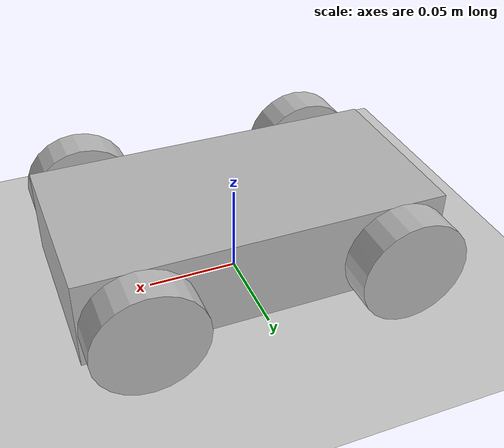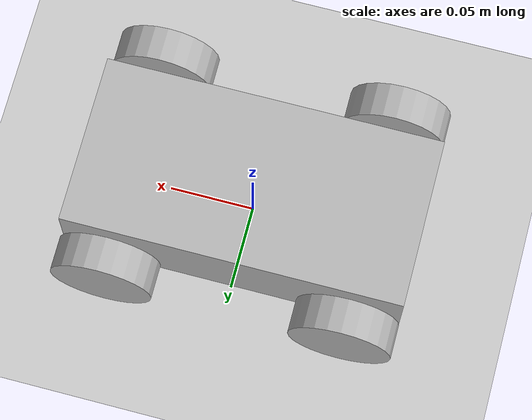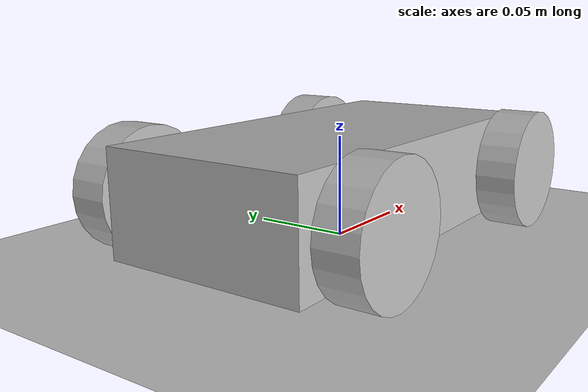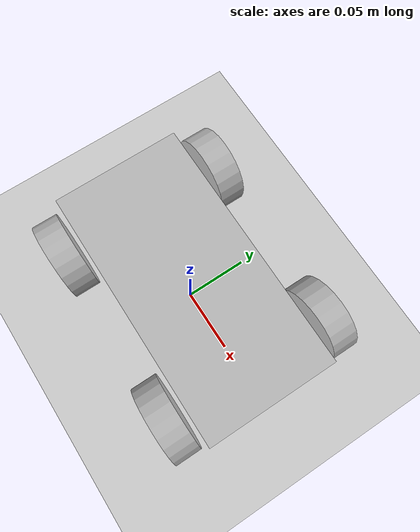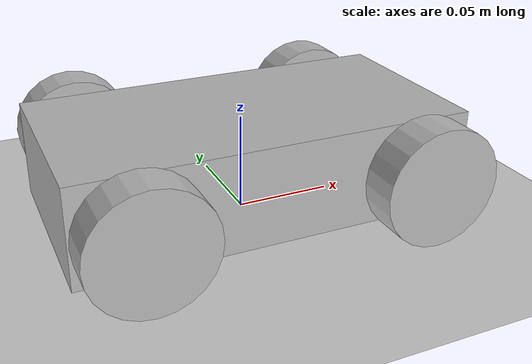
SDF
<sdf version="1.5">
  <world name="default">
    <include>
      <uri>model://sun</uri>
    </include>
    <include>
      <uri>model://ground_plane</uri>
    </include>

    <include>
      <uri>model:///home/esetron/catkin_ws/src/beginner_tutorials/worlds/vehicle</uri>
    </include>

  </world>
</sdf>

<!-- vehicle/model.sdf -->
<sdf version="1.4">
  <model name="vehicle">
    <pose>0 0 0.03 0 0 0</pose>

    <link name="base">
      <pose>0 0 0 0 0 0</pose>
      <inertial>
        <mass>1.0</mass>
        <inertia> <!-- inertias are tricky to compute -->
          <!-- http://gazebosim.org/tutorials?tut=inertia&cat=build_robot -->
          <ixx>0.083</ixx>       <!-- for a box: ixx = 0.083 * mass * (y*y + z*z) -->
          <ixy>0.0</ixy>         <!-- for a box: ixy = 0 -->
          <ixz>0.0</ixz>         <!-- for a box: ixz = 0 -->
          <iyy>0.083</iyy>       <!-- for a box: iyy = 0.083 * mass * (x*x + z*z) -->
          <iyz>0.0</iyz>         <!-- for a box: iyz = 0 -->
          <izz>0.083</izz>       <!-- for a box: izz = 0.083 * mass * (x*x + y*y) -->
        </inertia>
      </inertial>
      <collision name="base_collision">
        <geometry>
          <box>
            <size>0.2 0.1 0.05</size>
          </box>
        </geometry>
      </collision>
      <visual name="base_visual">
        <geometry>
          <box>
            <size>0.2 0.1 0.05</size>
          </box>
        </geometry>
      </visual>
    </link>

    <link name="wheel_front_left">
      <pose>0.07 0.065 0 1.57079632679 0 0</pose>
      <inertial>
        <mass>0.1</mass>
        <inertia>
          <ixx>0.001087473</ixx>
          <iyy>0.001087473</iyy>
          <izz>0.001092437</izz>
          <ixy>0</ixy>
          <ixz>0</ixz>
          <iyz>0</iyz>
        </inertia>
      </inertial>
      <collision name="wheel_front_left_collision">
        <geometry>
          <cylinder>
            <!-- Radius and length provided by Velodyne -->
            <radius>.03</radius>
            <length>.02</length>
          </cylinder>
        </geometry>
      </collision>

      <!-- The visual is mostly a copy of the collision -->
      <visual name="wheel_front_left_visual">
        <geometry>
          <cylinder>
            <radius>.03</radius>
            <length>.02</length>
          </cylinder>
        </geometry>
      </visual>
    </link>

    <joint type="revolute" name="wheel_front_left_joint">

      <!-- Position the joint at the bottom of the top link -->
      <pose>0 0 0 0 0 0</pose>

      <!-- Use the base link as the parent of the joint -->
      <parent>base</parent>

      <!-- Use the top link as the child of the joint -->
      <child>wheel_front_left</child>

      <!-- The axis defines the joint's degree of freedom -->
      <axis>

        <!-- Revolve around the z-axis -->
        <xyz>0 1 0</xyz>

        <!-- Limit refers to the range of motion of the joint -->
        <limit>

          <!-- Use a very large number to indicate a continuous revolution -->
          <lower>-10000000000000000</lower>
          <upper>10000000000000000</upper>
        </limit>
      </axis>
    </joint>

    <link name="wheel_front_right">
      <pose>0.07 -0.065 0 1.57079632679 0 0</pose>
      <inertial>
        <mass>0.1</mass>
        <inertia>
          <ixx>0.001087473</ixx>
          <iyy>0.001087473</iyy>
          <izz>0.001092437</izz>
          <ixy>0</ixy>
          <ixz>0</ixz>
          <iyz>0</iyz>
        </inertia>
      </inertial>
      <collision name="wheel_front_right_collision">
        <geometry>
          <cylinder>
            <!-- Radius and length provided by Velodyne -->
            <radius>.03</radius>
            <length>.02</length>
          </cylinder>
        </geometry>
      </collision>

      <!-- The visual is mostly a copy of the collision -->
      <visual name="wheel_front_right_visual">
        <geometry>
          <cylinder>
            <radius>.03</radius>
            <length>.02</length>
          </cylinder>
        </geometry>
      </visual>
    </link>

    <joint type="revolute" name="wheel_front_right_joint">

      <!-- Position the joint at the bottom of the top link -->
      <pose>0 0 0 0 0 0</pose>

      <!-- Use the base link as the parent of the joint -->
      <parent>base</parent>

      <!-- Use the top link as the child of the joint -->
      <child>wheel_front_right</child>

      <!-- The axis defines the joint's degree of freedom -->
      <axis>

        <!-- Revolve around the z-axis -->
        <xyz>0 1 0</xyz>

        <!-- Limit refers to the range of motion of the joint -->
        <limit>

          <!-- Use a very large number to indicate a continuous revolution -->
          <lower>-10000000000000000</lower>
          <upper>10000000000000000</upper>
        </limit>
      </axis>
    </joint>

    <link name="wheel_back_left">
      <pose>-0.07 0.065 0 1.57079632679 0 0</pose>
      <inertial>
        <mass>0.1</mass>
        <inertia>
          <ixx>0.001087473</ixx>
          <iyy>0.001087473</iyy>
          <izz>0.001092437</izz>
          <ixy>0</ixy>
          <ixz>0</ixz>
          <iyz>0</iyz>
        </inertia>
      </inertial>
      <collision name="wheel_back_left_collision">
        <geometry>
          <cylinder>
            <!-- Radius and length provided by Velodyne -->
            <radius>.03</radius>
            <length>.02</length>
          </cylinder>
        </geometry>
      </collision>

      <!-- The visual is mostly a copy of the collision -->
      <visual name="wheel_back_left_visual">
        <geometry>
          <cylinder>
            <radius>.03</radius>
            <length>.02</length>
          </cylinder>
        </geometry>
      </visual>
    </link>

    <joint type="revolute" name="wheel_back_left_joint">

      <!-- Position the joint at the bottom of the top link -->
      <pose>0 0 0 0 0 0</pose>

      <!-- Use the base link as the parent of the joint -->
      <parent>base</parent>

      <!-- Use the top link as the child of the joint -->
      <child>wheel_back_left</child>

      <!-- The axis defines the joint's degree of freedom -->
      <axis>

        <!-- Revolve around the z-axis -->
        <xyz>0 1 0</xyz>

        <!-- Limit refers to the range of motion of the joint -->
        <limit>

          <!-- Use a very large number to indicate a continuous revolution -->
          <lower>-10000000000000000</lower>
          <upper>10000000000000000</upper>
        </limit>
      </axis>
    </joint>

    <link name="wheel_back_right">
      <pose>-0.07 -0.065 0 1.57079632679 0 0</pose>
      <inertial>
        <mass>0.1</mass>
        <inertia>
          <ixx>0.001087473</ixx>
          <iyy>0.001087473</iyy>
          <izz>0.001092437</izz>
          <ixy>0</ixy>
          <ixz>0</ixz>
          <iyz>0</iyz>
        </inertia>
      </inertial>
      <collision name="wheel_back_right_collision">
        <geometry>
          <cylinder>
            <!-- Radius and length provided by Velodyne -->
            <radius>.03</radius>
            <length>.02</length>
          </cylinder>
        </geometry>
      </collision>

      <!-- The visual is mostly a copy of the collision -->
      <visual name="wheel_back_right_visual">
        <geometry>
          <cylinder>
            <radius>.03</radius>
            <length>.02</length>
          </cylinder>
        </geometry>
      </visual>
    </link>

    <joint type="revolute" name="wheel_back_right_joint">

      <!-- Position the joint at the bottom of the top link -->
      <pose>0 0 0 0 0 0</pose>

      <!-- Use the base link as the parent of the joint -->
      <parent>base</parent>

      <!-- Use the top link as the child of the joint -->
      <child>wheel_back_right</child>

      <!-- The axis defines the joint's degree of freedom -->
      <axis>

        <!-- Revolve around the z-axis -->
        <xyz>0 1 0</xyz>

        <!-- Limit refers to the range of motion of the joint -->
        <limit>

          <!-- Use a very large number to indicate a continuous revolution -->
          <lower>-10000000000000000</lower>
          <upper>10000000000000000</upper>
        </limit>
      </axis>
    </joint>

    <plugin name="differential_drive_controller"     filename="libgazebo_ros_diff_drive.so">
      <alwaysOn>false</alwaysOn>
      <updateRate>20</updateRate>
      <leftJoint>wheel_front_left_joint</leftJoint>
      <rightJoint>wheel_front_right_joint</rightJoint>

      <wheelSeparation>0.13</wheelSeparation>
      <wheelDiameter>0.06</wheelDiameter>

      <torque>20</torque>
      <commandTopic>cmd_vel</commandTopic>

      <!-- topic name published in the cpp file -->
      <odometryTopic>odom</odometryTopic>
      <odometryFrame>odom</odometryFrame>
      <robotBaseFrame>base</robotBaseFrame>

      <publishWheelTF>true</publishWheelTF>
      <publishWheelJointState>true</publishWheelJointState>

    </plugin>

  </model>
</sdf>
